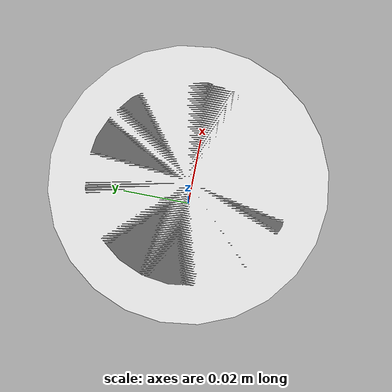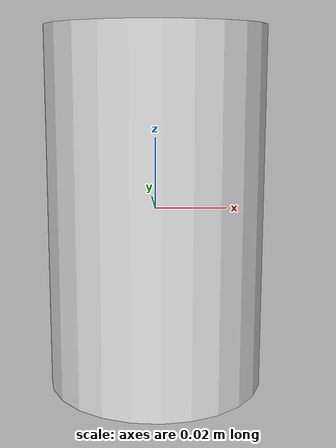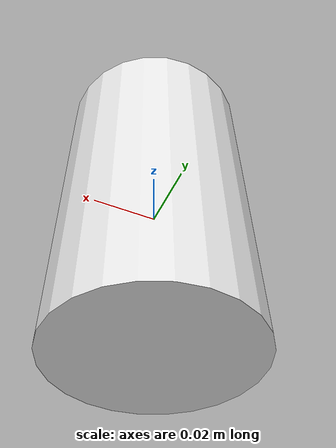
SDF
<?xml version="1.0" ?>
<sdf version="1.9">
  <model name="cup">
    <static>false</static>
    <pose>0 0 0 0 0 0</pose>

    <!-- Label: cup = 1 -->
    <plugin filename="gz-sim-label-system" name="gz::sim::systems::Label">
      <label>1</label>
    </plugin>

    <link name="link">
      <inertial>
        <mass>0.2</mass>
        <inertia>
          <ixx>0.0002</ixx><iyy>0.0002</iyy><izz>0.0002</izz>
          <ixy>0</ixy><ixz>0</ixz><iyz>0</iyz>
        </inertia>
      </inertial>

      <!-- Simple collision -->
      <collision name="collision">
        <geometry>
          <cylinder>
            <radius>0.04</radius>
            <length>0.10</length>
          </cylinder>
        </geometry>
      </collision>

      <!-- Outer wall visual -->
      <visual name="outer">
        <geometry>
          <cylinder>
            <radius>0.03</radius>
            <length>0.10</length>
          </cylinder>
        </geometry>
        <material>
          <diffuse>0.9 0.9 0.9 1</diffuse>
        </material>
      </visual>

      <!-- Inner cavity visual -->
      <visual name="inner_cavity">
        <pose>0 0 0.01 0 0 0</pose>
        <geometry>
          <cylinder>
            <radius>0.022</radius>
            <length>0.08</length>
          </cylinder>
        </geometry>
        <material>
          <diffuse>0.2 0.2 0.2 1</diffuse>
        </material>
        <transparency>0.3</transparency>
      </visual>
    </link>
  </model>
</sdf>
